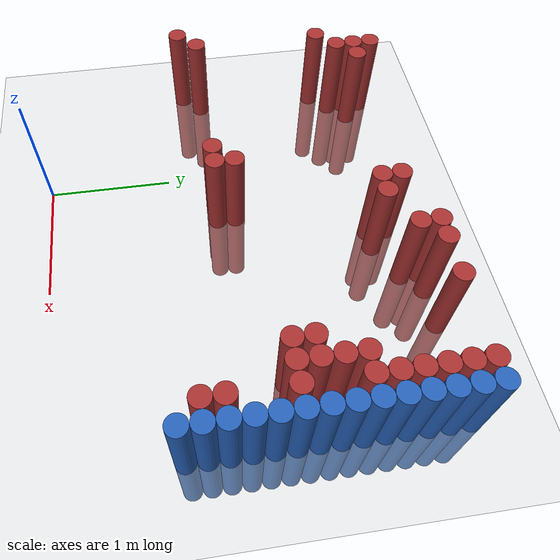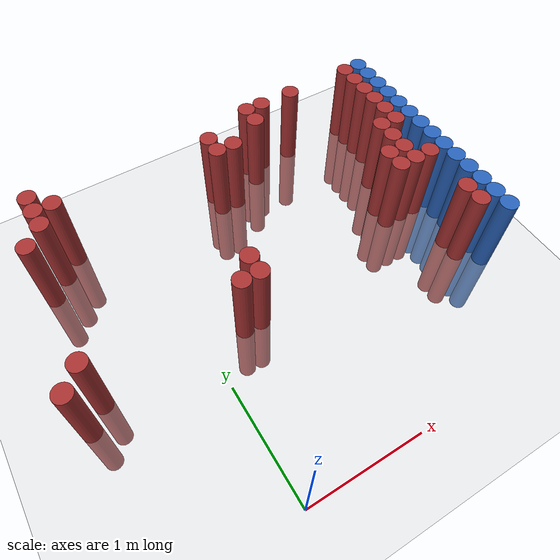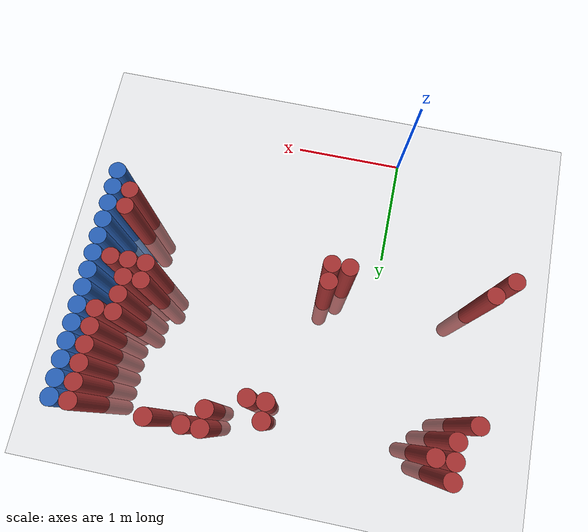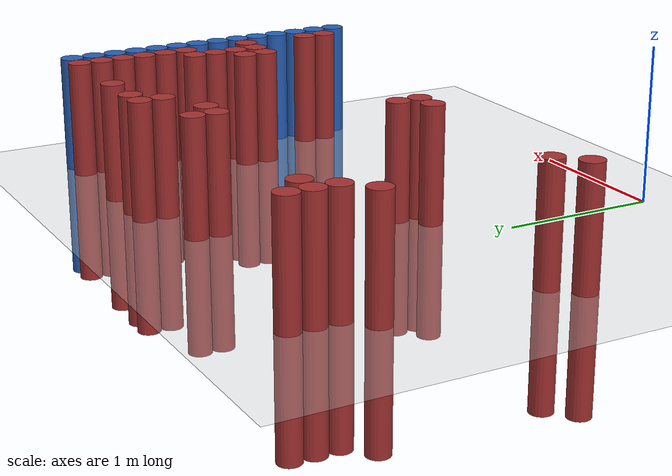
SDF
<sdf version="1.6">
 <world name="default">
  <model name="ground_plane">
   <static>1</static>
   <link name="link">
    <collision name="collision">
     <geometry><plane><normal>0 0 1</normal><size>100 100</size></plane></geometry>
     <surface><friction><ode><mu>100</mu><mu2>50</mu2></ode></friction></surface>
    </collision>
    <visual name="visual">
     <cast_shadows>0</cast_shadows>
     <geometry><plane><normal>0 0 1</normal><size>100 100</size></plane></geometry>
     <material>
      <script><uri>file://media/materials/scripts/gazebo.material</uri><name>Gazebo/Grey</name></script>
     </material>
    </visual>
   </link>
  </model>
  <model name="unit_cylinder_162">
   <static>1</static>
   <pose>-1.025000 1.225000 0.000000 0.000000 0.000000 0.000000</pose>
   <link name="link">
    <inertial>
     <mass>1</mass>
     <inertia><ixx>0.145833</ixx><ixy>0</ixy><ixz>0</ixz><iyy>0.145833</iyy><iyz>0</iyz><izz>0.125</izz></inertia>
    </inertial>
    <collision name="collision">
     <geometry><cylinder><radius>0.075000</radius><length>1.5</length></cylinder></geometry>
    </collision>
    <visual name="visual">
     <geometry><cylinder><radius>0.075000</radius><length>1.5</length></cylinder></geometry>
     <material>
      <ambient>0.648000 0.192000 0.192000 1</ambient>
      <diffuse>0.648000 0.192000 0.192000 1</diffuse>
     </material>
     <material>
      <script><name>Gazebo/Grey</name><uri>file://media/materials/scripts/gazebo.material</uri></script>
     </material>
    </visual>
   </link>
  </model>
  <model name="unit_cylinder_163">
   <static>1</static>
   <pose>-0.875000 1.375000 0.000000 0.000000 0.000000 0.000000</pose>
   <link name="link">
    <inertial>
     <mass>1</mass>
     <inertia><ixx>0.145833</ixx><ixy>0</ixy><ixz>0</ixz><iyy>0.145833</iyy><iyz>0</iyz><izz>0.125</izz></inertia>
    </inertial>
    <collision name="collision">
     <geometry><cylinder><radius>0.075000</radius><length>1.5</length></cylinder></geometry>
    </collision>
    <visual name="visual">
     <geometry><cylinder><radius>0.075000</radius><length>1.5</length></cylinder></geometry>
     <material>
      <ambient>0.648000 0.192000 0.192000 1</ambient>
      <diffuse>0.648000 0.192000 0.192000 1</diffuse>
     </material>
     <material>
      <script><name>Gazebo/Grey</name><uri>file://media/materials/scripts/gazebo.material</uri></script>
     </material>
    </visual>
   </link>
  </model>
  <model name="unit_cylinder_164">
   <static>1</static>
   <pose>-0.875000 2.425000 0.000000 0.000000 0.000000 0.000000</pose>
   <link name="link">
    <inertial>
     <mass>1</mass>
     <inertia><ixx>0.145833</ixx><ixy>0</ixy><ixz>0</ixz><iyy>0.145833</iyy><iyz>0</iyz><izz>0.125</izz></inertia>
    </inertial>
    <collision name="collision">
     <geometry><cylinder><radius>0.075000</radius><length>1.5</length></cylinder></geometry>
    </collision>
    <visual name="visual">
     <geometry><cylinder><radius>0.075000</radius><length>1.5</length></cylinder></geometry>
     <material>
      <ambient>0.648000 0.192000 0.192000 1</ambient>
      <diffuse>0.648000 0.192000 0.192000 1</diffuse>
     </material>
     <material>
      <script><name>Gazebo/Grey</name><uri>file://media/materials/scripts/gazebo.material</uri></script>
     </material>
    </visual>
   </link>
  </model>
  <model name="unit_cylinder_166">
   <static>1</static>
   <pose>-0.725000 2.575000 0.000000 0.000000 0.000000 0.000000</pose>
   <link name="link">
    <inertial>
     <mass>1</mass>
     <inertia><ixx>0.145833</ixx><ixy>0</ixy><ixz>0</ixz><iyy>0.145833</iyy><iyz>0</iyz><izz>0.125</izz></inertia>
    </inertial>
    <collision name="collision">
     <geometry><cylinder><radius>0.075000</radius><length>1.5</length></cylinder></geometry>
    </collision>
    <visual name="visual">
     <geometry><cylinder><radius>0.075000</radius><length>1.5</length></cylinder></geometry>
     <material>
      <ambient>0.648000 0.192000 0.192000 1</ambient>
      <diffuse>0.648000 0.192000 0.192000 1</diffuse>
     </material>
     <material>
      <script><name>Gazebo/Grey</name><uri>file://media/materials/scripts/gazebo.material</uri></script>
     </material>
    </visual>
   </link>
  </model>
  <model name="unit_cylinder_167">
   <static>1</static>
   <pose>-0.725000 2.725000 0.000000 0.000000 0.000000 0.000000</pose>
   <link name="link">
    <inertial>
     <mass>1</mass>
     <inertia><ixx>0.145833</ixx><ixy>0</ixy><ixz>0</ixz><iyy>0.145833</iyy><iyz>0</iyz><izz>0.125</izz></inertia>
    </inertial>
    <collision name="collision">
     <geometry><cylinder><radius>0.075000</radius><length>1.5</length></cylinder></geometry>
    </collision>
    <visual name="visual">
     <geometry><cylinder><radius>0.075000</radius><length>1.5</length></cylinder></geometry>
     <material>
      <ambient>0.648000 0.192000 0.192000 1</ambient>
      <diffuse>0.648000 0.192000 0.192000 1</diffuse>
     </material>
     <material>
      <script><name>Gazebo/Grey</name><uri>file://media/materials/scripts/gazebo.material</uri></script>
     </material>
    </visual>
   </link>
  </model>
  <model name="unit_cylinder_168">
   <static>1</static>
   <pose>-0.725000 2.875000 0.000000 0.000000 0.000000 0.000000</pose>
   <link name="link">
    <inertial>
     <mass>1</mass>
     <inertia><ixx>0.145833</ixx><ixy>0</ixy><ixz>0</ixz><iyy>0.145833</iyy><iyz>0</iyz><izz>0.125</izz></inertia>
    </inertial>
    <collision name="collision">
     <geometry><cylinder><radius>0.075000</radius><length>1.5</length></cylinder></geometry>
    </collision>
    <visual name="visual">
     <geometry><cylinder><radius>0.075000</radius><length>1.5</length></cylinder></geometry>
     <material>
      <ambient>0.648000 0.192000 0.192000 1</ambient>
      <diffuse>0.648000 0.192000 0.192000 1</diffuse>
     </material>
     <material>
      <script><name>Gazebo/Grey</name><uri>file://media/materials/scripts/gazebo.material</uri></script>
     </material>
    </visual>
   </link>
  </model>
  <model name="unit_cylinder_170">
   <static>1</static>
   <pose>-0.575000 2.725000 0.000000 0.000000 0.000000 0.000000</pose>
   <link name="link">
    <inertial>
     <mass>1</mass>
     <inertia><ixx>0.145833</ixx><ixy>0</ixy><ixz>0</ixz><iyy>0.145833</iyy><iyz>0</iyz><izz>0.125</izz></inertia>
    </inertial>
    <collision name="collision">
     <geometry><cylinder><radius>0.075000</radius><length>1.5</length></cylinder></geometry>
    </collision>
    <visual name="visual">
     <geometry><cylinder><radius>0.075000</radius><length>1.5</length></cylinder></geometry>
     <material>
      <ambient>0.648000 0.192000 0.192000 1</ambient>
      <diffuse>0.648000 0.192000 0.192000 1</diffuse>
     </material>
     <material>
      <script><name>Gazebo/Grey</name><uri>file://media/materials/scripts/gazebo.material</uri></script>
     </material>
    </visual>
   </link>
  </model>
  <model name="unit_cylinder_172">
   <static>1</static>
   <pose>0.325000 1.375000 0.000000 0.000000 0.000000 0.000000</pose>
   <link name="link">
    <inertial>
     <mass>1</mass>
     <inertia><ixx>0.145833</ixx><ixy>0</ixy><ixz>0</ixz><iyy>0.145833</iyy><iyz>0</iyz><izz>0.125</izz></inertia>
    </inertial>
    <collision name="collision">
     <geometry><cylinder><radius>0.075000</radius><length>1.5</length></cylinder></geometry>
    </collision>
    <visual name="visual">
     <geometry><cylinder><radius>0.075000</radius><length>1.5</length></cylinder></geometry>
     <material>
      <ambient>0.648000 0.192000 0.192000 1</ambient>
      <diffuse>0.648000 0.192000 0.192000 1</diffuse>
     </material>
     <material>
      <script><name>Gazebo/Grey</name><uri>file://media/materials/scripts/gazebo.material</uri></script>
     </material>
    </visual>
   </link>
  </model>
  <model name="unit_cylinder_173">
   <static>1</static>
   <pose>0.475000 1.375000 0.000000 0.000000 0.000000 0.000000</pose>
   <link name="link">
    <inertial>
     <mass>1</mass>
     <inertia><ixx>0.145833</ixx><ixy>0</ixy><ixz>0</ixz><iyy>0.145833</iyy><iyz>0</iyz><izz>0.125</izz></inertia>
    </inertial>
    <collision name="collision">
     <geometry><cylinder><radius>0.075000</radius><length>1.5</length></cylinder></geometry>
    </collision>
    <visual name="visual">
     <geometry><cylinder><radius>0.075000</radius><length>1.5</length></cylinder></geometry>
     <material>
      <ambient>0.648000 0.192000 0.192000 1</ambient>
      <diffuse>0.648000 0.192000 0.192000 1</diffuse>
     </material>
     <material>
      <script><name>Gazebo/Grey</name><uri>file://media/materials/scripts/gazebo.material</uri></script>
     </material>
    </visual>
   </link>
  </model>
  <model name="unit_cylinder_174">
   <static>1</static>
   <pose>0.475000 1.525000 0.000000 0.000000 0.000000 0.000000</pose>
   <link name="link">
    <inertial>
     <mass>1</mass>
     <inertia><ixx>0.145833</ixx><ixy>0</ixy><ixz>0</ixz><iyy>0.145833</iyy><iyz>0</iyz><izz>0.125</izz></inertia>
    </inertial>
    <collision name="collision">
     <geometry><cylinder><radius>0.075000</radius><length>1.5</length></cylinder></geometry>
    </collision>
    <visual name="visual">
     <geometry><cylinder><radius>0.075000</radius><length>1.5</length></cylinder></geometry>
     <material>
      <ambient>0.648000 0.192000 0.192000 1</ambient>
      <diffuse>0.648000 0.192000 0.192000 1</diffuse>
     </material>
     <material>
      <script><name>Gazebo/Grey</name><uri>file://media/materials/scripts/gazebo.material</uri></script>
     </material>
    </visual>
   </link>
  </model>
  <model name="unit_cylinder_176">
   <static>1</static>
   <pose>0.775000 2.575000 0.000000 0.000000 0.000000 0.000000</pose>
   <link name="link">
    <inertial>
     <mass>1</mass>
     <inertia><ixx>0.145833</ixx><ixy>0</ixy><ixz>0</ixz><iyy>0.145833</iyy><iyz>0</iyz><izz>0.125</izz></inertia>
    </inertial>
    <collision name="collision">
     <geometry><cylinder><radius>0.075000</radius><length>1.5</length></cylinder></geometry>
    </collision>
    <visual name="visual">
     <geometry><cylinder><radius>0.075000</radius><length>1.5</length></cylinder></geometry>
     <material>
      <ambient>0.648000 0.192000 0.192000 1</ambient>
      <diffuse>0.648000 0.192000 0.192000 1</diffuse>
     </material>
     <material>
      <script><name>Gazebo/Grey</name><uri>file://media/materials/scripts/gazebo.material</uri></script>
     </material>
    </visual>
   </link>
  </model>
  <model name="unit_cylinder_177">
   <static>1</static>
   <pose>0.775000 2.725000 0.000000 0.000000 0.000000 0.000000</pose>
   <link name="link">
    <inertial>
     <mass>1</mass>
     <inertia><ixx>0.145833</ixx><ixy>0</ixy><ixz>0</ixz><iyy>0.145833</iyy><iyz>0</iyz><izz>0.125</izz></inertia>
    </inertial>
    <collision name="collision">
     <geometry><cylinder><radius>0.075000</radius><length>1.5</length></cylinder></geometry>
    </collision>
    <visual name="visual">
     <geometry><cylinder><radius>0.075000</radius><length>1.5</length></cylinder></geometry>
     <material>
      <ambient>0.648000 0.192000 0.192000 1</ambient>
      <diffuse>0.648000 0.192000 0.192000 1</diffuse>
     </material>
     <material>
      <script><name>Gazebo/Grey</name><uri>file://media/materials/scripts/gazebo.material</uri></script>
     </material>
    </visual>
   </link>
  </model>
  <model name="unit_cylinder_181">
   <static>1</static>
   <pose>0.925000 2.575000 0.000000 0.000000 0.000000 0.000000</pose>
   <link name="link">
    <inertial>
     <mass>1</mass>
     <inertia><ixx>0.145833</ixx><ixy>0</ixy><ixz>0</ixz><iyy>0.145833</iyy><iyz>0</iyz><izz>0.125</izz></inertia>
    </inertial>
    <collision name="collision">
     <geometry><cylinder><radius>0.075000</radius><length>1.5</length></cylinder></geometry>
    </collision>
    <visual name="visual">
     <geometry><cylinder><radius>0.075000</radius><length>1.5</length></cylinder></geometry>
     <material>
      <ambient>0.648000 0.192000 0.192000 1</ambient>
      <diffuse>0.648000 0.192000 0.192000 1</diffuse>
     </material>
     <material>
      <script><name>Gazebo/Grey</name><uri>file://media/materials/scripts/gazebo.material</uri></script>
     </material>
    </visual>
   </link>
  </model>
  <model name="unit_cylinder_192">
   <static>1</static>
   <pose>1.225000 2.725000 0.000000 0.000000 0.000000 0.000000</pose>
   <link name="link">
    <inertial>
     <mass>1</mass>
     <inertia><ixx>0.145833</ixx><ixy>0</ixy><ixz>0</ixz><iyy>0.145833</iyy><iyz>0</iyz><izz>0.125</izz></inertia>
    </inertial>
    <collision name="collision">
     <geometry><cylinder><radius>0.075000</radius><length>1.5</length></cylinder></geometry>
    </collision>
    <visual name="visual">
     <geometry><cylinder><radius>0.075000</radius><length>1.5</length></cylinder></geometry>
     <material>
      <ambient>0.648000 0.192000 0.192000 1</ambient>
      <diffuse>0.648000 0.192000 0.192000 1</diffuse>
     </material>
     <material>
      <script><name>Gazebo/Grey</name><uri>file://media/materials/scripts/gazebo.material</uri></script>
     </material>
    </visual>
   </link>
  </model>
  <model name="unit_cylinder_193">
   <static>1</static>
   <pose>1.225000 2.875000 0.000000 0.000000 0.000000 0.000000</pose>
   <link name="link">
    <inertial>
     <mass>1</mass>
     <inertia><ixx>0.145833</ixx><ixy>0</ixy><ixz>0</ixz><iyy>0.145833</iyy><iyz>0</iyz><izz>0.125</izz></inertia>
    </inertial>
    <collision name="collision">
     <geometry><cylinder><radius>0.075000</radius><length>1.5</length></cylinder></geometry>
    </collision>
    <visual name="visual">
     <geometry><cylinder><radius>0.075000</radius><length>1.5</length></cylinder></geometry>
     <material>
      <ambient>0.648000 0.192000 0.192000 1</ambient>
      <diffuse>0.648000 0.192000 0.192000 1</diffuse>
     </material>
     <material>
      <script><name>Gazebo/Grey</name><uri>file://media/materials/scripts/gazebo.material</uri></script>
     </material>
    </visual>
   </link>
  </model>
  <model name="unit_cylinder_196">
   <static>1</static>
   <pose>1.375000 2.875000 0.000000 0.000000 0.000000 0.000000</pose>
   <link name="link">
    <inertial>
     <mass>1</mass>
     <inertia><ixx>0.145833</ixx><ixy>0</ixy><ixz>0</ixz><iyy>0.145833</iyy><iyz>0</iyz><izz>0.125</izz></inertia>
    </inertial>
    <collision name="collision">
     <geometry><cylinder><radius>0.075000</radius><length>1.5</length></cylinder></geometry>
    </collision>
    <visual name="visual">
     <geometry><cylinder><radius>0.075000</radius><length>1.5</length></cylinder></geometry>
     <material>
      <ambient>0.648000 0.192000 0.192000 1</ambient>
      <diffuse>0.648000 0.192000 0.192000 1</diffuse>
     </material>
     <material>
      <script><name>Gazebo/Grey</name><uri>file://media/materials/scripts/gazebo.material</uri></script>
     </material>
    </visual>
   </link>
  </model>
  <model name="unit_cylinder_208">
   <static>1</static>
   <pose>1.675000 2.875000 0.000000 0.000000 0.000000 0.000000</pose>
   <link name="link">
    <inertial>
     <mass>1</mass>
     <inertia><ixx>0.145833</ixx><ixy>0</ixy><ixz>0</ixz><iyy>0.145833</iyy><iyz>0</iyz><izz>0.125</izz></inertia>
    </inertial>
    <collision name="collision">
     <geometry><cylinder><radius>0.075000</radius><length>1.5</length></cylinder></geometry>
    </collision>
    <visual name="visual">
     <geometry><cylinder><radius>0.075000</radius><length>1.5</length></cylinder></geometry>
     <material>
      <ambient>0.648000 0.192000 0.192000 1</ambient>
      <diffuse>0.648000 0.192000 0.192000 1</diffuse>
     </material>
     <material>
      <script><name>Gazebo/Grey</name><uri>file://media/materials/scripts/gazebo.material</uri></script>
     </material>
    </visual>
   </link>
  </model>
  <model name="unit_cylinder_218">
   <static>1</static>
   <pose>1.975000 1.675000 0.000000 0.000000 0.000000 0.000000</pose>
   <link name="link">
    <inertial>
     <mass>1</mass>
     <inertia><ixx>0.145833</ixx><ixy>0</ixy><ixz>0</ixz><iyy>0.145833</iyy><iyz>0</iyz><izz>0.125</izz></inertia>
    </inertial>
    <collision name="collision">
     <geometry><cylinder><radius>0.075000</radius><length>1.5</length></cylinder></geometry>
    </collision>
    <visual name="visual">
     <geometry><cylinder><radius>0.075000</radius><length>1.5</length></cylinder></geometry>
     <material>
      <ambient>0.648000 0.192000 0.192000 1</ambient>
      <diffuse>0.648000 0.192000 0.192000 1</diffuse>
     </material>
     <material>
      <script><name>Gazebo/Grey</name><uri>file://media/materials/scripts/gazebo.material</uri></script>
     </material>
    </visual>
   </link>
  </model>
  <model name="unit_cylinder_219">
   <static>1</static>
   <pose>1.975000 1.825000 0.000000 0.000000 0.000000 0.000000</pose>
   <link name="link">
    <inertial>
     <mass>1</mass>
     <inertia><ixx>0.145833</ixx><ixy>0</ixy><ixz>0</ixz><iyy>0.145833</iyy><iyz>0</iyz><izz>0.125</izz></inertia>
    </inertial>
    <collision name="collision">
     <geometry><cylinder><radius>0.075000</radius><length>1.5</length></cylinder></geometry>
    </collision>
    <visual name="visual">
     <geometry><cylinder><radius>0.075000</radius><length>1.5</length></cylinder></geometry>
     <material>
      <ambient>0.648000 0.192000 0.192000 1</ambient>
      <diffuse>0.648000 0.192000 0.192000 1</diffuse>
     </material>
     <material>
      <script><name>Gazebo/Grey</name><uri>file://media/materials/scripts/gazebo.material</uri></script>
     </material>
    </visual>
   </link>
  </model>
  <model name="unit_cylinder_223">
   <static>1</static>
   <pose>2.125000 1.675000 0.000000 0.000000 0.000000 0.000000</pose>
   <link name="link">
    <inertial>
     <mass>1</mass>
     <inertia><ixx>0.145833</ixx><ixy>0</ixy><ixz>0</ixz><iyy>0.145833</iyy><iyz>0</iyz><izz>0.125</izz></inertia>
    </inertial>
    <collision name="collision">
     <geometry><cylinder><radius>0.075000</radius><length>1.5</length></cylinder></geometry>
    </collision>
    <visual name="visual">
     <geometry><cylinder><radius>0.075000</radius><length>1.5</length></cylinder></geometry>
     <material>
      <ambient>0.648000 0.192000 0.192000 1</ambient>
      <diffuse>0.648000 0.192000 0.192000 1</diffuse>
     </material>
     <material>
      <script><name>Gazebo/Grey</name><uri>file://media/materials/scripts/gazebo.material</uri></script>
     </material>
    </visual>
   </link>
  </model>
  <model name="unit_cylinder_224">
   <static>1</static>
   <pose>2.125000 1.825000 0.000000 0.000000 0.000000 0.000000</pose>
   <link name="link">
    <inertial>
     <mass>1</mass>
     <inertia><ixx>0.145833</ixx><ixy>0</ixy><ixz>0</ixz><iyy>0.145833</iyy><iyz>0</iyz><izz>0.125</izz></inertia>
    </inertial>
    <collision name="collision">
     <geometry><cylinder><radius>0.075000</radius><length>1.5</length></cylinder></geometry>
    </collision>
    <visual name="visual">
     <geometry><cylinder><radius>0.075000</radius><length>1.5</length></cylinder></geometry>
     <material>
      <ambient>0.648000 0.192000 0.192000 1</ambient>
      <diffuse>0.648000 0.192000 0.192000 1</diffuse>
     </material>
     <material>
      <script><name>Gazebo/Grey</name><uri>file://media/materials/scripts/gazebo.material</uri></script>
     </material>
    </visual>
   </link>
  </model>
  <model name="unit_cylinder_225">
   <static>1</static>
   <pose>2.125000 1.975000 0.000000 0.000000 0.000000 0.000000</pose>
   <link name="link">
    <inertial>
     <mass>1</mass>
     <inertia><ixx>0.145833</ixx><ixy>0</ixy><ixz>0</ixz><iyy>0.145833</iyy><iyz>0</iyz><izz>0.125</izz></inertia>
    </inertial>
    <collision name="collision">
     <geometry><cylinder><radius>0.075000</radius><length>1.5</length></cylinder></geometry>
    </collision>
    <visual name="visual">
     <geometry><cylinder><radius>0.075000</radius><length>1.5</length></cylinder></geometry>
     <material>
      <ambient>0.648000 0.192000 0.192000 1</ambient>
      <diffuse>0.648000 0.192000 0.192000 1</diffuse>
     </material>
     <material>
      <script><name>Gazebo/Grey</name><uri>file://media/materials/scripts/gazebo.material</uri></script>
     </material>
    </visual>
   </link>
  </model>
  <model name="unit_cylinder_226">
   <static>1</static>
   <pose>2.125000 2.125000 0.000000 0.000000 0.000000 0.000000</pose>
   <link name="link">
    <inertial>
     <mass>1</mass>
     <inertia><ixx>0.145833</ixx><ixy>0</ixy><ixz>0</ixz><iyy>0.145833</iyy><iyz>0</iyz><izz>0.125</izz></inertia>
    </inertial>
    <collision name="collision">
     <geometry><cylinder><radius>0.075000</radius><length>1.5</length></cylinder></geometry>
    </collision>
    <visual name="visual">
     <geometry><cylinder><radius>0.075000</radius><length>1.5</length></cylinder></geometry>
     <material>
      <ambient>0.648000 0.192000 0.192000 1</ambient>
      <diffuse>0.648000 0.192000 0.192000 1</diffuse>
     </material>
     <material>
      <script><name>Gazebo/Grey</name><uri>file://media/materials/scripts/gazebo.material</uri></script>
     </material>
    </visual>
   </link>
  </model>
  <model name="unit_cylinder_231">
   <static>1</static>
   <pose>2.275000 1.075000 0.000000 0.000000 0.000000 0.000000</pose>
   <link name="link">
    <inertial>
     <mass>1</mass>
     <inertia><ixx>0.145833</ixx><ixy>0</ixy><ixz>0</ixz><iyy>0.145833</iyy><iyz>0</iyz><izz>0.125</izz></inertia>
    </inertial>
    <collision name="collision">
     <geometry><cylinder><radius>0.075000</radius><length>1.5</length></cylinder></geometry>
    </collision>
    <visual name="visual">
     <geometry><cylinder><radius>0.075000</radius><length>1.5</length></cylinder></geometry>
     <material>
      <ambient>0.648000 0.192000 0.192000 1</ambient>
      <diffuse>0.648000 0.192000 0.192000 1</diffuse>
     </material>
     <material>
      <script><name>Gazebo/Grey</name><uri>file://media/materials/scripts/gazebo.material</uri></script>
     </material>
    </visual>
   </link>
  </model>
  <model name="unit_cylinder_232">
   <static>1</static>
   <pose>2.275000 1.225000 0.000000 0.000000 0.000000 0.000000</pose>
   <link name="link">
    <inertial>
     <mass>1</mass>
     <inertia><ixx>0.145833</ixx><ixy>0</ixy><ixz>0</ixz><iyy>0.145833</iyy><iyz>0</iyz><izz>0.125</izz></inertia>
    </inertial>
    <collision name="collision">
     <geometry><cylinder><radius>0.075000</radius><length>1.5</length></cylinder></geometry>
    </collision>
    <visual name="visual">
     <geometry><cylinder><radius>0.075000</radius><length>1.5</length></cylinder></geometry>
     <material>
      <ambient>0.648000 0.192000 0.192000 1</ambient>
      <diffuse>0.648000 0.192000 0.192000 1</diffuse>
     </material>
     <material>
      <script><name>Gazebo/Grey</name><uri>file://media/materials/scripts/gazebo.material</uri></script>
     </material>
    </visual>
   </link>
  </model>
  <model name="unit_cylinder_233">
   <static>1</static>
   <pose>2.275000 1.675000 0.000000 0.000000 0.000000 0.000000</pose>
   <link name="link">
    <inertial>
     <mass>1</mass>
     <inertia><ixx>0.145833</ixx><ixy>0</ixy><ixz>0</ixz><iyy>0.145833</iyy><iyz>0</iyz><izz>0.125</izz></inertia>
    </inertial>
    <collision name="collision">
     <geometry><cylinder><radius>0.075000</radius><length>1.5</length></cylinder></geometry>
    </collision>
    <visual name="visual">
     <geometry><cylinder><radius>0.075000</radius><length>1.5</length></cylinder></geometry>
     <material>
      <ambient>0.648000 0.192000 0.192000 1</ambient>
      <diffuse>0.648000 0.192000 0.192000 1</diffuse>
     </material>
     <material>
      <script><name>Gazebo/Grey</name><uri>file://media/materials/scripts/gazebo.material</uri></script>
     </material>
    </visual>
   </link>
  </model>
  <model name="unit_cylinder_234">
   <static>1</static>
   <pose>2.275000 2.125000 0.000000 0.000000 0.000000 0.000000</pose>
   <link name="link">
    <inertial>
     <mass>1</mass>
     <inertia><ixx>0.145833</ixx><ixy>0</ixy><ixz>0</ixz><iyy>0.145833</iyy><iyz>0</iyz><izz>0.125</izz></inertia>
    </inertial>
    <collision name="collision">
     <geometry><cylinder><radius>0.075000</radius><length>1.5</length></cylinder></geometry>
    </collision>
    <visual name="visual">
     <geometry><cylinder><radius>0.075000</radius><length>1.5</length></cylinder></geometry>
     <material>
      <ambient>0.648000 0.192000 0.192000 1</ambient>
      <diffuse>0.648000 0.192000 0.192000 1</diffuse>
     </material>
     <material>
      <script><name>Gazebo/Grey</name><uri>file://media/materials/scripts/gazebo.material</uri></script>
     </material>
    </visual>
   </link>
  </model>
  <model name="unit_cylinder_235">
   <static>1</static>
   <pose>2.275000 2.275000 0.000000 0.000000 0.000000 0.000000</pose>
   <link name="link">
    <inertial>
     <mass>1</mass>
     <inertia><ixx>0.145833</ixx><ixy>0</ixy><ixz>0</ixz><iyy>0.145833</iyy><iyz>0</iyz><izz>0.125</izz></inertia>
    </inertial>
    <collision name="collision">
     <geometry><cylinder><radius>0.075000</radius><length>1.5</length></cylinder></geometry>
    </collision>
    <visual name="visual">
     <geometry><cylinder><radius>0.075000</radius><length>1.5</length></cylinder></geometry>
     <material>
      <ambient>0.648000 0.192000 0.192000 1</ambient>
      <diffuse>0.648000 0.192000 0.192000 1</diffuse>
     </material>
     <material>
      <script><name>Gazebo/Grey</name><uri>file://media/materials/scripts/gazebo.material</uri></script>
     </material>
    </visual>
   </link>
  </model>
  <model name="unit_cylinder_236">
   <static>1</static>
   <pose>2.275000 2.425000 0.000000 0.000000 0.000000 0.000000</pose>
   <link name="link">
    <inertial>
     <mass>1</mass>
     <inertia><ixx>0.145833</ixx><ixy>0</ixy><ixz>0</ixz><iyy>0.145833</iyy><iyz>0</iyz><izz>0.125</izz></inertia>
    </inertial>
    <collision name="collision">
     <geometry><cylinder><radius>0.075000</radius><length>1.5</length></cylinder></geometry>
    </collision>
    <visual name="visual">
     <geometry><cylinder><radius>0.075000</radius><length>1.5</length></cylinder></geometry>
     <material>
      <ambient>0.648000 0.192000 0.192000 1</ambient>
      <diffuse>0.648000 0.192000 0.192000 1</diffuse>
     </material>
     <material>
      <script><name>Gazebo/Grey</name><uri>file://media/materials/scripts/gazebo.material</uri></script>
     </material>
    </visual>
   </link>
  </model>
  <model name="unit_cylinder_237">
   <static>1</static>
   <pose>2.275000 2.575000 0.000000 0.000000 0.000000 0.000000</pose>
   <link name="link">
    <inertial>
     <mass>1</mass>
     <inertia><ixx>0.145833</ixx><ixy>0</ixy><ixz>0</ixz><iyy>0.145833</iyy><iyz>0</iyz><izz>0.125</izz></inertia>
    </inertial>
    <collision name="collision">
     <geometry><cylinder><radius>0.075000</radius><length>1.5</length></cylinder></geometry>
    </collision>
    <visual name="visual">
     <geometry><cylinder><radius>0.075000</radius><length>1.5</length></cylinder></geometry>
     <material>
      <ambient>0.648000 0.192000 0.192000 1</ambient>
      <diffuse>0.648000 0.192000 0.192000 1</diffuse>
     </material>
     <material>
      <script><name>Gazebo/Grey</name><uri>file://media/materials/scripts/gazebo.material</uri></script>
     </material>
    </visual>
   </link>
  </model>
  <model name="unit_cylinder_238">
   <static>1</static>
   <pose>2.275000 2.725000 0.000000 0.000000 0.000000 0.000000</pose>
   <link name="link">
    <inertial>
     <mass>1</mass>
     <inertia><ixx>0.145833</ixx><ixy>0</ixy><ixz>0</ixz><iyy>0.145833</iyy><iyz>0</iyz><izz>0.125</izz></inertia>
    </inertial>
    <collision name="collision">
     <geometry><cylinder><radius>0.075000</radius><length>1.5</length></cylinder></geometry>
    </collision>
    <visual name="visual">
     <geometry><cylinder><radius>0.075000</radius><length>1.5</length></cylinder></geometry>
     <material>
      <ambient>0.648000 0.192000 0.192000 1</ambient>
      <diffuse>0.648000 0.192000 0.192000 1</diffuse>
     </material>
     <material>
      <script><name>Gazebo/Grey</name><uri>file://media/materials/scripts/gazebo.material</uri></script>
     </material>
    </visual>
   </link>
  </model>
  <model name="unit_cylinder_239">
   <static>1</static>
   <pose>2.275000 2.875000 0.000000 0.000000 0.000000 0.000000</pose>
   <link name="link">
    <inertial>
     <mass>1</mass>
     <inertia><ixx>0.145833</ixx><ixy>0</ixy><ixz>0</ixz><iyy>0.145833</iyy><iyz>0</iyz><izz>0.125</izz></inertia>
    </inertial>
    <collision name="collision">
     <geometry><cylinder><radius>0.075000</radius><length>1.5</length></cylinder></geometry>
    </collision>
    <visual name="visual">
     <geometry><cylinder><radius>0.075000</radius><length>1.5</length></cylinder></geometry>
     <material>
      <ambient>0.648000 0.192000 0.192000 1</ambient>
      <diffuse>0.648000 0.192000 0.192000 1</diffuse>
     </material>
     <material>
      <script><name>Gazebo/Grey</name><uri>file://media/materials/scripts/gazebo.material</uri></script>
     </material>
    </visual>
   </link>
  </model>
  <model name="unit_cylinder_251">
   <static>1</static>
   <pose>2.425000 0.925000 0.000000 0.000000 0.000000 0.000000</pose>
   <link name="link">
    <inertial>
     <mass>1</mass>
     <inertia><ixx>0.145833</ixx><ixy>0</ixy><ixz>0</ixz><iyy>0.145833</iyy><iyz>0</iyz><izz>0.125</izz></inertia>
    </inertial>
    <collision name="collision">
     <geometry><cylinder><radius>0.075000</radius><length>1.5</length></cylinder></geometry>
    </collision>
    <visual name="visual">
     <geometry><cylinder><radius>0.075000</radius><length>1.5</length></cylinder></geometry>
     <material>
      <ambient>0.152000 0.379000 0.720000 1</ambient>
      <diffuse>0.152000 0.379000 0.720000 1</diffuse>
     </material>
     <material>
      <script><name>Gazebo/Grey</name><uri>file://media/materials/scripts/gazebo.material</uri></script>
     </material>
    </visual>
   </link>
  </model>
  <model name="unit_cylinder_252">
   <static>1</static>
   <pose>2.425000 1.075000 0.000000 0.000000 0.000000 0.000000</pose>
   <link name="link">
    <inertial>
     <mass>1</mass>
     <inertia><ixx>0.145833</ixx><ixy>0</ixy><ixz>0</ixz><iyy>0.145833</iyy><iyz>0</iyz><izz>0.125</izz></inertia>
    </inertial>
    <collision name="collision">
     <geometry><cylinder><radius>0.075000</radius><length>1.5</length></cylinder></geometry>
    </collision>
    <visual name="visual">
     <geometry><cylinder><radius>0.075000</radius><length>1.5</length></cylinder></geometry>
     <material>
      <ambient>0.152000 0.379000 0.720000 1</ambient>
      <diffuse>0.152000 0.379000 0.720000 1</diffuse>
     </material>
     <material>
      <script><name>Gazebo/Grey</name><uri>file://media/materials/scripts/gazebo.material</uri></script>
     </material>
    </visual>
   </link>
  </model>
  <model name="unit_cylinder_253">
   <static>1</static>
   <pose>2.425000 1.225000 0.000000 0.000000 0.000000 0.000000</pose>
   <link name="link">
    <inertial>
     <mass>1</mass>
     <inertia><ixx>0.145833</ixx><ixy>0</ixy><ixz>0</ixz><iyy>0.145833</iyy><iyz>0</iyz><izz>0.125</izz></inertia>
    </inertial>
    <collision name="collision">
     <geometry><cylinder><radius>0.075000</radius><length>1.5</length></cylinder></geometry>
    </collision>
    <visual name="visual">
     <geometry><cylinder><radius>0.075000</radius><length>1.5</length></cylinder></geometry>
     <material>
      <ambient>0.152000 0.379000 0.720000 1</ambient>
      <diffuse>0.152000 0.379000 0.720000 1</diffuse>
     </material>
     <material>
      <script><name>Gazebo/Grey</name><uri>file://media/materials/scripts/gazebo.material</uri></script>
     </material>
    </visual>
   </link>
  </model>
  <model name="unit_cylinder_254">
   <static>1</static>
   <pose>2.425000 1.375000 0.000000 0.000000 0.000000 0.000000</pose>
   <link name="link">
    <inertial>
     <mass>1</mass>
     <inertia><ixx>0.145833</ixx><ixy>0</ixy><ixz>0</ixz><iyy>0.145833</iyy><iyz>0</iyz><izz>0.125</izz></inertia>
    </inertial>
    <collision name="collision">
     <geometry><cylinder><radius>0.075000</radius><length>1.5</length></cylinder></geometry>
    </collision>
    <visual name="visual">
     <geometry><cylinder><radius>0.075000</radius><length>1.5</length></cylinder></geometry>
     <material>
      <ambient>0.152000 0.379000 0.720000 1</ambient>
      <diffuse>0.152000 0.379000 0.720000 1</diffuse>
     </material>
     <material>
      <script><name>Gazebo/Grey</name><uri>file://media/materials/scripts/gazebo.material</uri></script>
     </material>
    </visual>
   </link>
  </model>
  <model name="unit_cylinder_255">
   <static>1</static>
   <pose>2.425000 1.525000 0.000000 0.000000 0.000000 0.000000</pose>
   <link name="link">
    <inertial>
     <mass>1</mass>
     <inertia><ixx>0.145833</ixx><ixy>0</ixy><ixz>0</ixz><iyy>0.145833</iyy><iyz>0</iyz><izz>0.125</izz></inertia>
    </inertial>
    <collision name="collision">
     <geometry><cylinder><radius>0.075000</radius><length>1.5</length></cylinder></geometry>
    </collision>
    <visual name="visual">
     <geometry><cylinder><radius>0.075000</radius><length>1.5</length></cylinder></geometry>
     <material>
      <ambient>0.152000 0.379000 0.720000 1</ambient>
      <diffuse>0.152000 0.379000 0.720000 1</diffuse>
     </material>
     <material>
      <script><name>Gazebo/Grey</name><uri>file://media/materials/scripts/gazebo.material</uri></script>
     </material>
    </visual>
   </link>
  </model>
  <model name="unit_cylinder_256">
   <static>1</static>
   <pose>2.425000 1.675000 0.000000 0.000000 0.000000 0.000000</pose>
   <link name="link">
    <inertial>
     <mass>1</mass>
     <inertia><ixx>0.145833</ixx><ixy>0</ixy><ixz>0</ixz><iyy>0.145833</iyy><iyz>0</iyz><izz>0.125</izz></inertia>
    </inertial>
    <collision name="collision">
     <geometry><cylinder><radius>0.075000</radius><length>1.5</length></cylinder></geometry>
    </collision>
    <visual name="visual">
     <geometry><cylinder><radius>0.075000</radius><length>1.5</length></cylinder></geometry>
     <material>
      <ambient>0.152000 0.379000 0.720000 1</ambient>
      <diffuse>0.152000 0.379000 0.720000 1</diffuse>
     </material>
     <material>
      <script><name>Gazebo/Grey</name><uri>file://media/materials/scripts/gazebo.material</uri></script>
     </material>
    </visual>
   </link>
  </model>
  <model name="unit_cylinder_257">
   <static>1</static>
   <pose>2.425000 1.825000 0.000000 0.000000 0.000000 0.000000</pose>
   <link name="link">
    <inertial>
     <mass>1</mass>
     <inertia><ixx>0.145833</ixx><ixy>0</ixy><ixz>0</ixz><iyy>0.145833</iyy><iyz>0</iyz><izz>0.125</izz></inertia>
    </inertial>
    <collision name="collision">
     <geometry><cylinder><radius>0.075000</radius><length>1.5</length></cylinder></geometry>
    </collision>
    <visual name="visual">
     <geometry><cylinder><radius>0.075000</radius><length>1.5</length></cylinder></geometry>
     <material>
      <ambient>0.152000 0.379000 0.720000 1</ambient>
      <diffuse>0.152000 0.379000 0.720000 1</diffuse>
     </material>
     <material>
      <script><name>Gazebo/Grey</name><uri>file://media/materials/scripts/gazebo.material</uri></script>
     </material>
    </visual>
   </link>
  </model>
  <model name="unit_cylinder_258">
   <static>1</static>
   <pose>2.425000 1.975000 0.000000 0.000000 0.000000 0.000000</pose>
   <link name="link">
    <inertial>
     <mass>1</mass>
     <inertia><ixx>0.145833</ixx><ixy>0</ixy><ixz>0</ixz><iyy>0.145833</iyy><iyz>0</iyz><izz>0.125</izz></inertia>
    </inertial>
    <collision name="collision">
     <geometry><cylinder><radius>0.075000</radius><length>1.5</length></cylinder></geometry>
    </collision>
    <visual name="visual">
     <geometry><cylinder><radius>0.075000</radius><length>1.5</length></cylinder></geometry>
     <material>
      <ambient>0.152000 0.379000 0.720000 1</ambient>
      <diffuse>0.152000 0.379000 0.720000 1</diffuse>
     </material>
     <material>
      <script><name>Gazebo/Grey</name><uri>file://media/materials/scripts/gazebo.material</uri></script>
     </material>
    </visual>
   </link>
  </model>
  <model name="unit_cylinder_259">
   <static>1</static>
   <pose>2.425000 2.125000 0.000000 0.000000 0.000000 0.000000</pose>
   <link name="link">
    <inertial>
     <mass>1</mass>
     <inertia><ixx>0.145833</ixx><ixy>0</ixy><ixz>0</ixz><iyy>0.145833</iyy><iyz>0</iyz><izz>0.125</izz></inertia>
    </inertial>
    <collision name="collision">
     <geometry><cylinder><radius>0.075000</radius><length>1.5</length></cylinder></geometry>
    </collision>
    <visual name="visual">
     <geometry><cylinder><radius>0.075000</radius><length>1.5</length></cylinder></geometry>
     <material>
      <ambient>0.152000 0.379000 0.720000 1</ambient>
      <diffuse>0.152000 0.379000 0.720000 1</diffuse>
     </material>
     <material>
      <script><name>Gazebo/Grey</name><uri>file://media/materials/scripts/gazebo.material</uri></script>
     </material>
    </visual>
   </link>
  </model>
  <model name="unit_cylinder_260">
   <static>1</static>
   <pose>2.425000 2.275000 0.000000 0.000000 0.000000 0.000000</pose>
   <link name="link">
    <inertial>
     <mass>1</mass>
     <inertia><ixx>0.145833</ixx><ixy>0</ixy><ixz>0</ixz><iyy>0.145833</iyy><iyz>0</iyz><izz>0.125</izz></inertia>
    </inertial>
    <collision name="collision">
     <geometry><cylinder><radius>0.075000</radius><length>1.5</length></cylinder></geometry>
    </collision>
    <visual name="visual">
     <geometry><cylinder><radius>0.075000</radius><length>1.5</length></cylinder></geometry>
     <material>
      <ambient>0.152000 0.379000 0.720000 1</ambient>
      <diffuse>0.152000 0.379000 0.720000 1</diffuse>
     </material>
     <material>
      <script><name>Gazebo/Grey</name><uri>file://media/materials/scripts/gazebo.material</uri></script>
     </material>
    </visual>
   </link>
  </model>
  <model name="unit_cylinder_261">
   <static>1</static>
   <pose>2.425000 2.425000 0.000000 0.000000 0.000000 0.000000</pose>
   <link name="link">
    <inertial>
     <mass>1</mass>
     <inertia><ixx>0.145833</ixx><ixy>0</ixy><ixz>0</ixz><iyy>0.145833</iyy><iyz>0</iyz><izz>0.125</izz></inertia>
    </inertial>
    <collision name="collision">
     <geometry><cylinder><radius>0.075000</radius><length>1.5</length></cylinder></geometry>
    </collision>
    <visual name="visual">
     <geometry><cylinder><radius>0.075000</radius><length>1.5</length></cylinder></geometry>
     <material>
      <ambient>0.152000 0.379000 0.720000 1</ambient>
      <diffuse>0.152000 0.379000 0.720000 1</diffuse>
     </material>
     <material>
      <script><name>Gazebo/Grey</name><uri>file://media/materials/scripts/gazebo.material</uri></script>
     </material>
    </visual>
   </link>
  </model>
  <model name="unit_cylinder_262">
   <static>1</static>
   <pose>2.425000 2.575000 0.000000 0.000000 0.000000 0.000000</pose>
   <link name="link">
    <inertial>
     <mass>1</mass>
     <inertia><ixx>0.145833</ixx><ixy>0</ixy><ixz>0</ixz><iyy>0.145833</iyy><iyz>0</iyz><izz>0.125</izz></inertia>
    </inertial>
    <collision name="collision">
     <geometry><cylinder><radius>0.075000</radius><length>1.5</length></cylinder></geometry>
    </collision>
    <visual name="visual">
     <geometry><cylinder><radius>0.075000</radius><length>1.5</length></cylinder></geometry>
     <material>
      <ambient>0.152000 0.379000 0.720000 1</ambient>
      <diffuse>0.152000 0.379000 0.720000 1</diffuse>
     </material>
     <material>
      <script><name>Gazebo/Grey</name><uri>file://media/materials/scripts/gazebo.material</uri></script>
     </material>
    </visual>
   </link>
  </model>
  <model name="unit_cylinder_263">
   <static>1</static>
   <pose>2.425000 2.725000 0.000000 0.000000 0.000000 0.000000</pose>
   <link name="link">
    <inertial>
     <mass>1</mass>
     <inertia><ixx>0.145833</ixx><ixy>0</ixy><ixz>0</ixz><iyy>0.145833</iyy><iyz>0</iyz><izz>0.125</izz></inertia>
    </inertial>
    <collision name="collision">
     <geometry><cylinder><radius>0.075000</radius><length>1.5</length></cylinder></geometry>
    </collision>
    <visual name="visual">
     <geometry><cylinder><radius>0.075000</radius><length>1.5</length></cylinder></geometry>
     <material>
      <ambient>0.152000 0.379000 0.720000 1</ambient>
      <diffuse>0.152000 0.379000 0.720000 1</diffuse>
     </material>
     <material>
      <script><name>Gazebo/Grey</name><uri>file://media/materials/scripts/gazebo.material</uri></script>
     </material>
    </visual>
   </link>
  </model>
  <model name="unit_cylinder_264">
   <static>1</static>
   <pose>2.425000 2.875000 0.000000 0.000000 0.000000 0.000000</pose>
   <link name="link">
    <inertial>
     <mass>1</mass>
     <inertia><ixx>0.145833</ixx><ixy>0</ixy><ixz>0</ixz><iyy>0.145833</iyy><iyz>0</iyz><izz>0.125</izz></inertia>
    </inertial>
    <collision name="collision">
     <geometry><cylinder><radius>0.075000</radius><length>1.5</length></cylinder></geometry>
    </collision>
    <visual name="visual">
     <geometry><cylinder><radius>0.075000</radius><length>1.5</length></cylinder></geometry>
     <material>
      <ambient>0.152000 0.379000 0.720000 1</ambient>
      <diffuse>0.152000 0.379000 0.720000 1</diffuse>
     </material>
     <material>
      <script><name>Gazebo/Grey</name><uri>file://media/materials/scripts/gazebo.material</uri></script>
     </material>
    </visual>
   </link>
  </model>
 </world>
</sdf>
